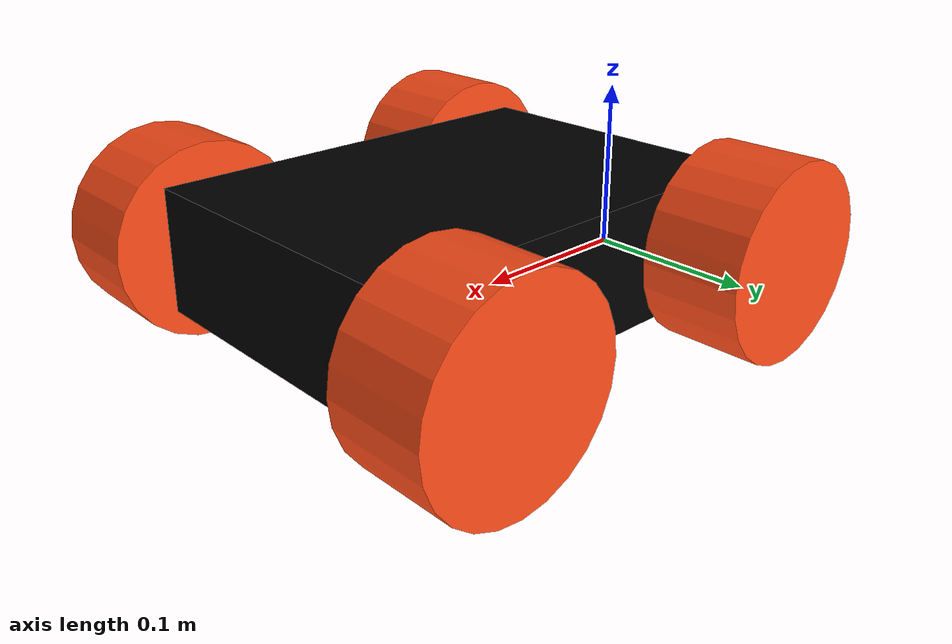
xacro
<?xml version="1.0"?>
<robot xmlns:xacro="http://www.ros.org/wiki/xacro">
<xacro:include filename="gazebo_control.xacro" />

     <!-- === Couleurs disponibles === -->
  <material name="white">
    <color rgba="1 1 1 1"/>
  </material>

  <material name="orange">
    <color rgba="1 0.3 0.1 1"/>
  </material>

  <material name="blue">
    <color rgba="0.2 0.2 1 1"/>
  </material>

  <material name="black">
    <color rgba="0 0 0 1"/>
  </material>
  <!-- === Link racine : base_link === -->
 <link name="base_link"/>

   <!-- === Joint fixe entre base_link et chassis === -->
<joint name="chassis_joint" type="fixed">
    <parent link="base_link"/>
    <child link="chassis"/>
     <origin xyz="0 0 0" rpy="0 0 0"/>
  </joint>

    <!-- === Châssis du robot === -->
<link name="chassis">
    <visual>
      <origin xyz="0.125 0 0.035" rpy="0 0 0"/>
      <geometry>
        <box size="0.25 0.18 0.07"/>
      </geometry>
      <material name="black"/>
    </visual>
      <collision>
     <origin xyz="0.125 0 0.035" rpy="0 0 0"/>
    <geometry>
      <box size="0.25 0.18 0.07"/>
    </geometry>
  </collision>

  <inertial>
  <origin xyz="0.125 0 0.035" rpy="0 0 0"/>
    <mass value="1.0"/>
    <inertia ixx="0.01" ixy="0.0" ixz="0.0"
             iyy="0.01" iyz="0.0"
             izz="0.01"/>
  </inertial>
  </link>
  <gazebo reference="chassis">
    <material>Gazebo/Black</material>
</gazebo>

  <!-- front LEFT WHEEL -->

<joint name="wheel_front_left_joint" type="continuous">
    <parent link="base_link"/>
    <child link="wheel_front_left"/>
    <origin xyz="0.225 0.1175 0.035" rpy="${-pi/2} 0 0"/>
    <axis xyz="0 0 1"/>
    <dynamics damping="1.0" friction="1.0" />
    <limit effort="10000" velocity="1000" />
</joint>

<link name="wheel_front_left">
    <visual>
        <geometry>
            <cylinder length="0.055" radius="0.055"/>
        </geometry>
        <material name="orange"/>
    </visual>
     <collision>
    <geometry>
      <cylinder length="0.055" radius="0.055"/>
    </geometry>
  </collision>

  <inertial>
    <mass value="0.2"/>
    <inertia ixx="0.0001" ixy="0.0" ixz="0.0"
             iyy="0.0001" iyz="0.0"
             izz="0.0001"/>
  </inertial>
</link>
  <gazebo reference="wheel_front_left">
    <material>Gazebo/Red</material>
</gazebo>

  <!-- front RIGHT WHEEL -->

<joint name="wheel_front_right_joint" type="continuous">
    <parent link="base_link"/>
    <child link="wheel_front_right"/>
    <origin xyz="0.225 -0.1175 0.035" rpy="${pi/2} 0 0"/>
    <axis xyz="0 0 -1"/>
    <limit effort="10000" velocity="1000" />
	    <dynamics damping="1.0" friction="1.0" />
</joint>

<link name="wheel_front_right">
    <visual>
        <geometry>
            <cylinder length="0.055" radius="0.055"/>
        </geometry>
        <material name="orange"/>
    </visual>
     <collision>
    <geometry>
      <cylinder length="0.055" radius="0.055"/>
    </geometry>
  </collision>

  <inertial>
    <mass value="0.2"/>
    <inertia ixx="0.0001" ixy="0.0" ixz="0.0"
             iyy="0.0001" iyz="0.0"
             izz="0.0001"/>
  </inertial>
</link>
  <gazebo reference="wheel_front_right">
    <material>Gazebo/Red</material>
</gazebo>

<!-- Roue arrière gauche -->
<joint name="wheel_rear_left_joint" type="continuous">
    <parent link="base_link"/>
    <child link="wheel_rear_left"/>
    <origin xyz="0.025 0.1175 0.035" rpy="-${pi/2} 0 0"/>
    <axis xyz="0 0 1"/>
    <limit effort="10000" velocity="1000" />
	    <dynamics damping="1.0" friction="1.0" />
</joint>

<link name="wheel_rear_left">
    <visual>
        <geometry>
            <cylinder length="0.055" radius="0.055"/>
        </geometry>
        <material name="orange"/>
    </visual>
     <collision>
    <geometry>
      <cylinder length="0.055" radius="0.055"/>
    </geometry>
  </collision>

  <inertial>
    <mass value="0.2"/>
    <inertia ixx="0.0001" ixy="0.0" ixz="0.0"
             iyy="0.0001" iyz="0.0"
             izz="0.0001"/>
  </inertial>
</link>
  <gazebo reference="wheel_rear_left">
    <material>Gazebo/Red</material>
</gazebo>

<!-- Roue arrière droite -->
<joint name="wheel_rear_right_joint" type="continuous">
    <parent link="base_link"/>
    <child link="wheel_rear_right"/>
    <origin xyz="0.025 -0.1175 0.035" rpy="${pi/2} 0 0"/>
    <axis xyz="0 0 -1"/>
    <limit effort="10000" velocity="1000" />
	    <dynamics damping="1.0" friction="1.0" />
</joint>

<link name="wheel_rear_right">
    <visual>
        <geometry>
            <cylinder length="0.055" radius="0.055"/>
        </geometry>
        <material name="orange"/>
    </visual>
     <collision>
    <geometry>
      <cylinder length="0.055" radius="0.055"/>
    </geometry>
  </collision>

  <inertial>
    <mass value="0.2"/>
    <inertia ixx="0.0001" ixy="0.0" ixz="0.0"
             iyy="0.0001" iyz="0.0"
             izz="0.0001"/>
  </inertial>
</link>
  <gazebo reference="wheel_rear_right">
    <material>Gazebo/Red</material>
</gazebo>

</robot>
